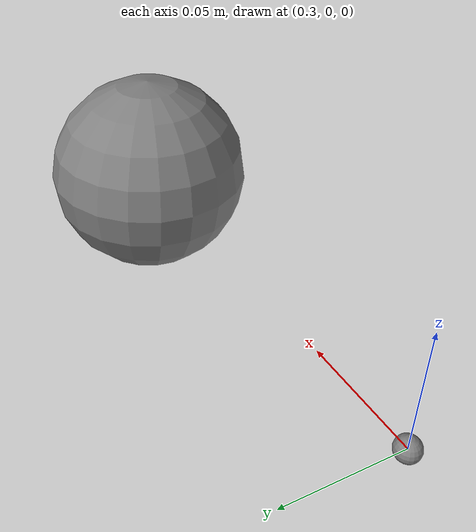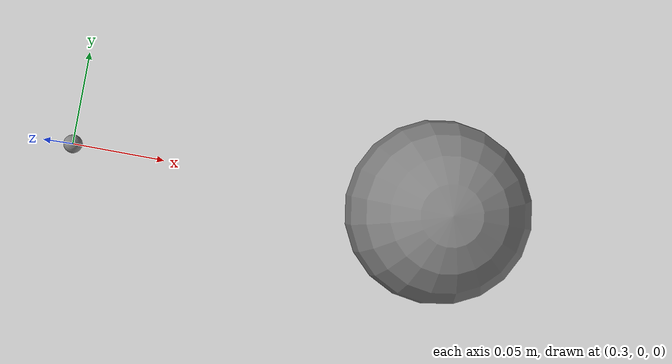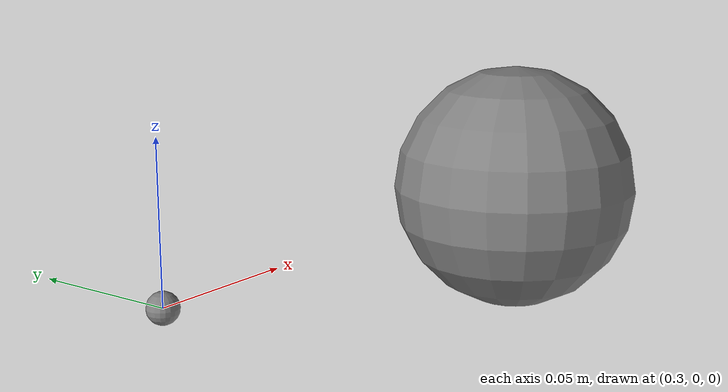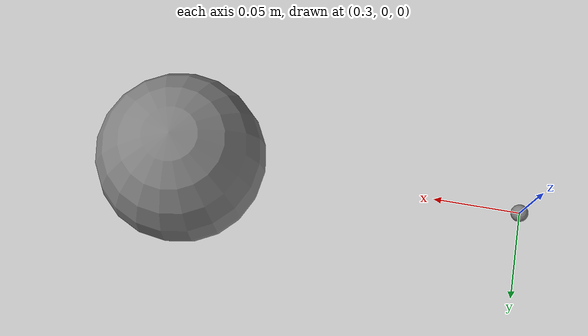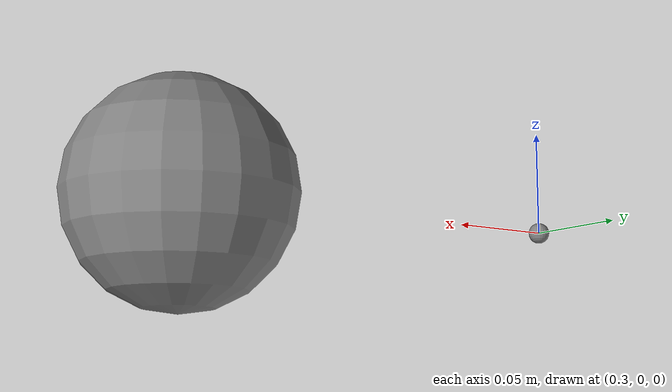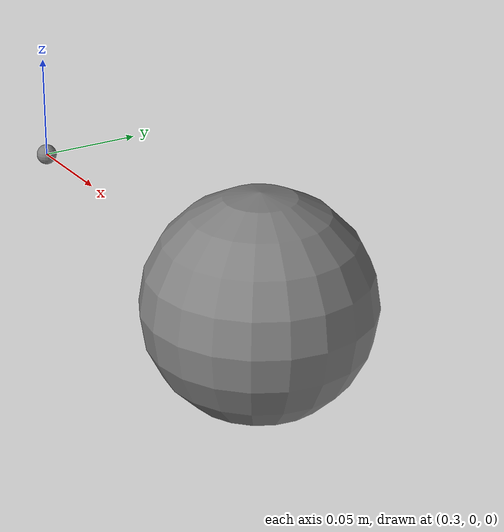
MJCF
<mujoco model="t20">
            <option gravity="0 0 0"/>
            <worldbody>
                <body name="b1" pos="0 0 0">
                    <joint name="j1" type="hinge" axis="0 0 1"/>
                    <geom name="g1" type="sphere" size="0.05" pos="0.5 0 0" mass="1"/>
                    <site name="s1" pos="0.3 0 0"/>
                </body>
            </worldbody>
            <sensor>
                <frameangvel name="fav_geom" objtype="geom" objname="g1"/>
                <frameangvel name="fav_site" site="s1"/>
            </sensor>
        </mujoco>
